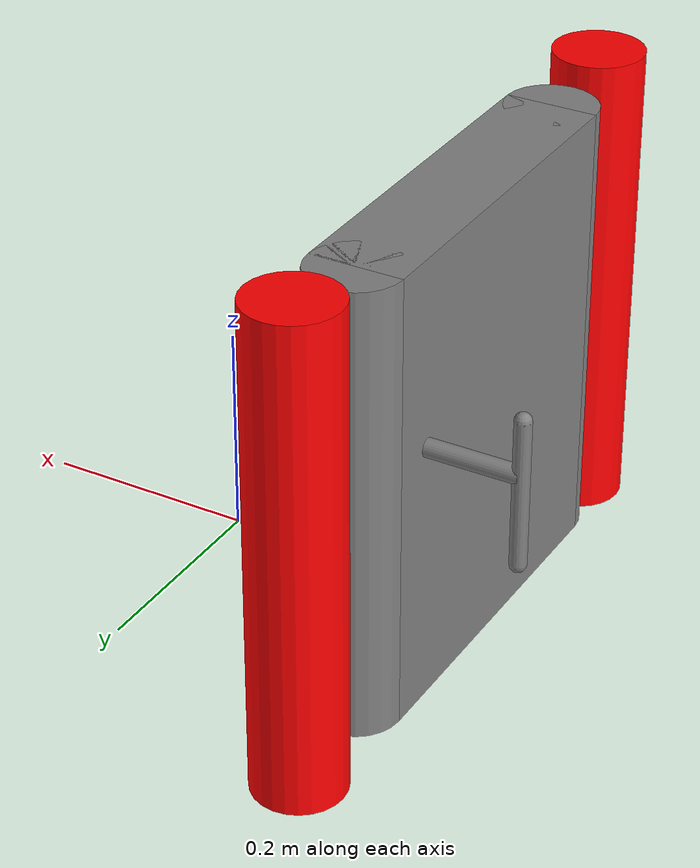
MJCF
<!-- from https://github.com/vikashplus/mj_envs/tree/master/mj_envs/hand_manipulation_suite/assets -->
<!-- Information about door can be found in this paper: https://arxiv.org/pdf/1709.10087.pdf -->

<mujoco model="door">
    <worldbody>
      <body name="door_body">
        <body name="collision">
          <body name="frame" pos="-0.075 0 0" quat="0.707388 0 0 -0.706825">
              <inertial pos="0.29 0 0" quat="0.5 0.5 0.5 0.5" mass="7.85398" diaginertia="0.923301 0.764585 0.168533" />
              <geom size="0.05 0.27" pos="0.6 0 0" type="cylinder" rgba="1 0 0 1" group="1" />
              <geom size="0.05 0.27" pos="-0.02 0 0" type="cylinder" rgba="1 0 0 1" group="1"/>
              <body name="door" pos="0.29 0 0">
                  <inertial pos="0.0296816 -0.00152345 0" quat="0.701072 0 0 0.713091" mass="10.43455" diaginertia="0.0913751 0.0521615 0.043714" />
                  <joint name="door_hinge" pos="0.31 0 0" axis="0 0 1" range="0 3.14" limited="true" damping="10" frictionloss="10" />

                  <geom size="0.2 0.05 0.25" type="box" friction="1 1 1" group="1"/>
                  <geom size="0.05 0.25" pos="0.2 0 0" type="cylinder" group="1" />
                  <geom size="0.05 0.25" pos="-0.2 0 0" type="cylinder" group="1" />
                  <body name="latch" pos="-0.15 0 -0.025">
                      <inertial pos="-0.017762 0.0138544 0" quat="0.365653 0.605347 -0.36522 0.605365" mass="0.10" diaginertia="0.0483771 0.0410001 0.0111013" />
                      <geom size="0.01 0.15" pos="0 0 0.07" quat="0.707388 0.706825 0 0" type="cylinder"  group="1" />
                      <geom size="0.009 0.08" pos="0 -0.15 0.05" quat="0.707388 0 0 0.706825" type="capsule"  group="1"/>
                      <site name="S_handle" pos="0 -0.15 0.100" size="0.0001" group="0"/>
                  </body>
              </body>
          </body>
        </body>
      </body>
    </worldbody>
</mujoco>
